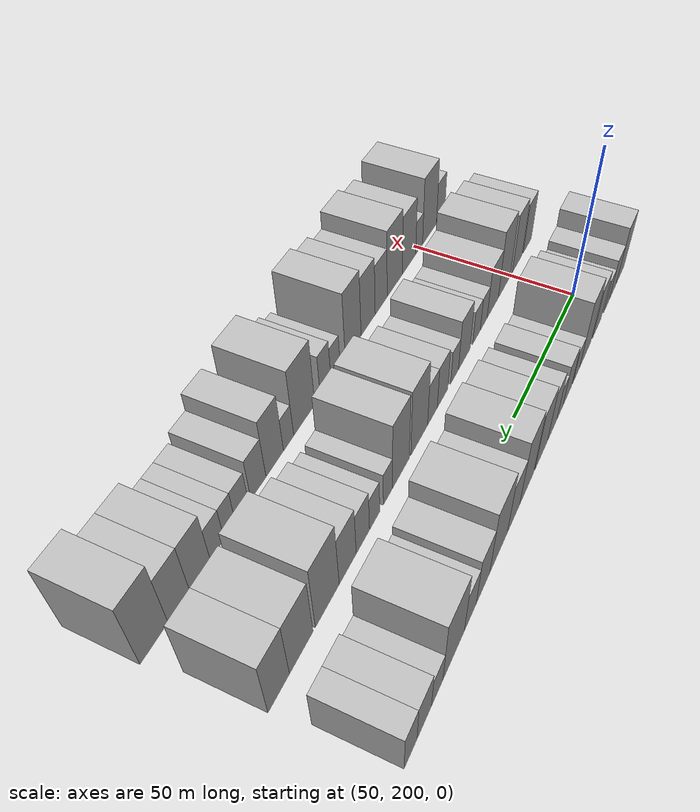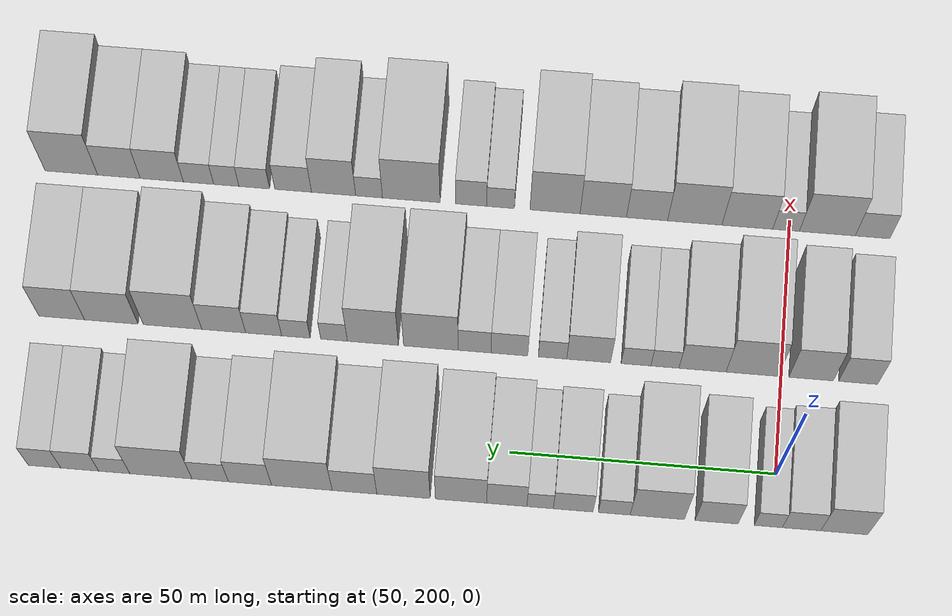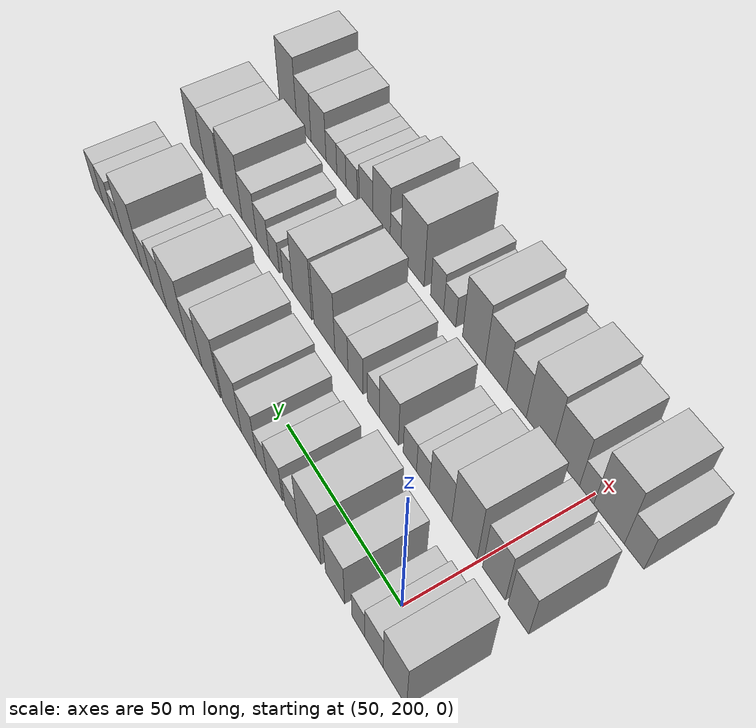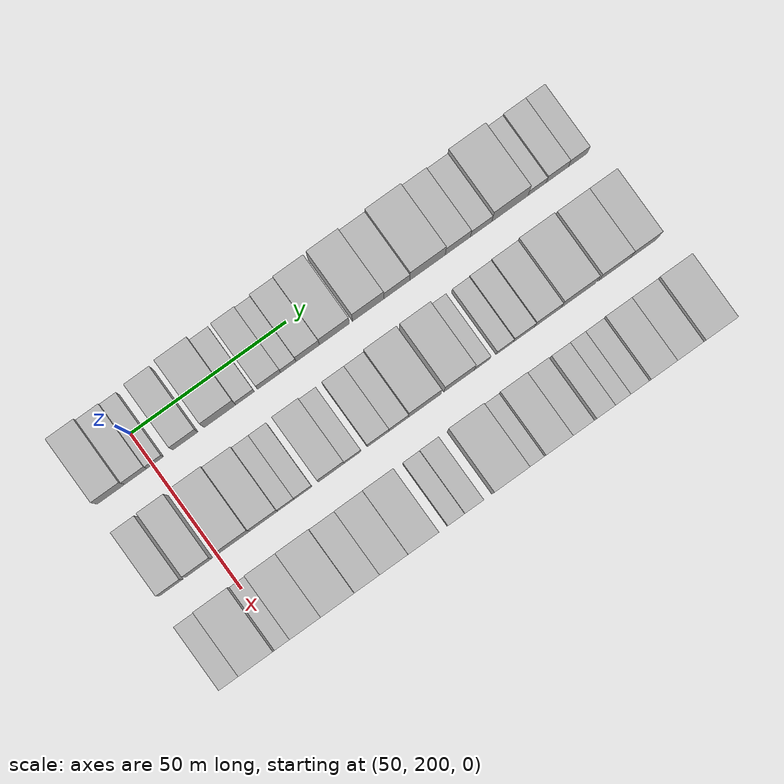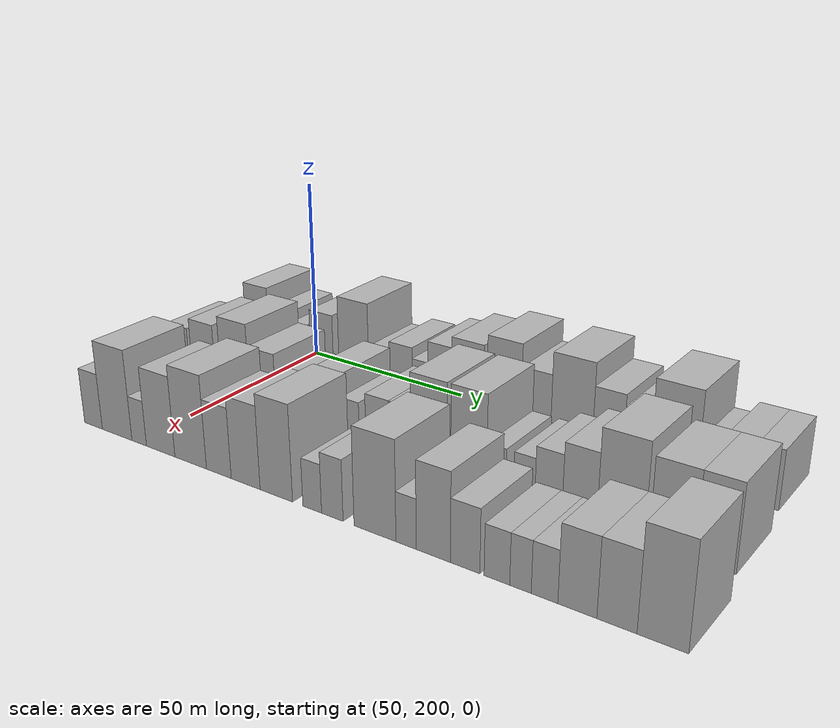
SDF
<sdf version="1.6">
 <world name="default">
  <model name="building_56">
   <static>1</static>
   <pose>50.0000 186.6588 0 0.000000 0.000000 0.000000</pose>
   <link name="link">
    <pose>0 0 10.50 0 0 0</pose>
    <collision name="collision"><geometry><box><size>20.0000 8.8078 21.0000</size></box></geometry></collision>
    <visual name="visual">
     <cast_shadows>0</cast_shadows>
     <geometry><box><size>20.0000 8.8078 21.0000</size></box></geometry>
     <material>
      <script>
       <uri>model://HANNAS_wall/materials/scripts</uri>
       <uri>model://HANNAS_wall/materials/textures</uri>
       <name>vrc/HANNAS_wall</name>
      </script>
     </material>
    </visual>
   </link>
  </model>
  <model name="building_57">
   <static>1</static>
   <pose>50.0000 194.6586 0 0.000000 0.000000 0.000000</pose>
   <link name="link">
    <pose>0 0 7.50 0 0 0</pose>
    <collision name="collision"><geometry><box><size>20.0000 7.1919 15.0000</size></box></geometry></collision>
    <visual name="visual">
     <cast_shadows>0</cast_shadows>
     <geometry><box><size>20.0000 7.1919 15.0000</size></box></geometry>
     <material>
      <script>
       <uri>model://HANNAS_wall/materials/scripts</uri>
       <uri>model://HANNAS_wall/materials/textures</uri>
       <name>vrc/HANNAS_wall</name>
      </script>
     </material>
    </visual>
   </link>
  </model>
  <model name="building_58">
   <static>1</static>
   <pose>50.0000 200.8763 0 0.000000 0.000000 0.000000</pose>
   <link name="link">
    <pose>0 0 6.00 0 0 0</pose>
    <collision name="collision"><geometry><box><size>20.0000 5.2436 12.0000</size></box></geometry></collision>
    <visual name="visual">
     <cast_shadows>0</cast_shadows>
     <geometry><box><size>20.0000 5.2436 12.0000</size></box></geometry>
     <material>
      <script>
       <uri>model://HANNAS_wall/materials/scripts</uri>
       <uri>model://HANNAS_wall/materials/textures</uri>
       <name>vrc/HANNAS_wall</name>
      </script>
     </material>
    </visual>
   </link>
  </model>
  <model name="building_59">
   <static>1</static>
   <pose>50.0000 210.5300 0 0.000000 0.000000 0.000000</pose>
   <link name="link">
    <pose>0 0 9.00 0 0 0</pose>
    <collision name="collision"><geometry><box><size>20.0000 8.0638 18.0000</size></box></geometry></collision>
    <visual name="visual">
     <cast_shadows>0</cast_shadows>
     <geometry><box><size>20.0000 8.0638 18.0000</size></box></geometry>
     <material>
      <script>
       <uri>model://HANNAS_wall/materials/scripts</uri>
       <uri>model://HANNAS_wall/materials/textures</uri>
       <name>vrc/HANNAS_wall</name>
      </script>
     </material>
    </visual>
   </link>
  </model>
  <model name="building_60">
   <static>1</static>
   <pose>50.0000 221.6558 0 0.000000 0.000000 0.000000</pose>
   <link name="link">
    <pose>0 0 12.00 0 0 0</pose>
    <collision name="collision"><geometry><box><size>20.0000 10.1877 24.0000</size></box></geometry></collision>
    <visual name="visual">
     <cast_shadows>0</cast_shadows>
     <geometry><box><size>20.0000 10.1877 24.0000</size></box></geometry>
     <material>
      <script>
       <uri>model://HANNAS_wall/materials/scripts</uri>
       <uri>model://HANNAS_wall/materials/textures</uri>
       <name>vrc/HANNAS_wall</name>
      </script>
     </material>
    </visual>
   </link>
  </model>
  <model name="building_61">
   <static>1</static>
   <pose>50.0000 229.7219 0 0.000000 0.000000 0.000000</pose>
   <link name="link">
    <pose>0 0 6.00 0 0 0</pose>
    <collision name="collision"><geometry><box><size>20.0000 5.9446 12.0000</size></box></geometry></collision>
    <visual name="visual">
     <cast_shadows>0</cast_shadows>
     <geometry><box><size>20.0000 5.9446 12.0000</size></box></geometry>
     <material>
      <script>
       <uri>model://HANNAS_wall/materials/scripts</uri>
       <uri>model://HANNAS_wall/materials/textures</uri>
       <name>vrc/HANNAS_wall</name>
      </script>
     </material>
    </visual>
   </link>
  </model>
  <model name="building_62">
   <static>1</static>
   <pose>50.0000 237.4242 0 0.000000 0.000000 0.000000</pose>
   <link name="link">
    <pose>0 0 7.50 0 0 0</pose>
    <collision name="collision"><geometry><box><size>20.0000 7.4600 15.0000</size></box></geometry></collision>
    <visual name="visual">
     <cast_shadows>0</cast_shadows>
     <geometry><box><size>20.0000 7.4600 15.0000</size></box></geometry>
     <material>
      <script>
       <uri>model://HANNAS_wall/materials/scripts</uri>
       <uri>model://HANNAS_wall/materials/textures</uri>
       <name>vrc/HANNAS_wall</name>
      </script>
     </material>
    </visual>
   </link>
  </model>
  <model name="building_63">
   <static>1</static>
   <pose>50.0000 243.6281 0 0.000000 0.000000 0.000000</pose>
   <link name="link">
    <pose>0 0 6.00 0 0 0</pose>
    <collision name="collision"><geometry><box><size>20.0000 4.9477 12.0000</size></box></geometry></collision>
    <visual name="visual">
     <cast_shadows>0</cast_shadows>
     <geometry><box><size>20.0000 4.9477 12.0000</size></box></geometry>
     <material>
      <script>
       <uri>model://HANNAS_wall/materials/scripts</uri>
       <uri>model://HANNAS_wall/materials/textures</uri>
       <name>vrc/HANNAS_wall</name>
      </script>
     </material>
    </visual>
   </link>
  </model>
  <model name="building_64">
   <static>1</static>
   <pose>50.0000 249.8682 0 0.000000 0.000000 0.000000</pose>
   <link name="link">
    <pose>0 0 9.00 0 0 0</pose>
    <collision name="collision"><geometry><box><size>20.0000 7.5326 18.0000</size></box></geometry></collision>
    <visual name="visual">
     <cast_shadows>0</cast_shadows>
     <geometry><box><size>20.0000 7.5326 18.0000</size></box></geometry>
     <material>
      <script>
       <uri>model://HANNAS_wall/materials/scripts</uri>
       <uri>model://HANNAS_wall/materials/textures</uri>
       <name>vrc/HANNAS_wall</name>
      </script>
     </material>
    </visual>
   </link>
  </model>
  <model name="building_65">
   <static>1</static>
   <pose>50.0000 258.4494 0 0.000000 0.000000 0.000000</pose>
   <link name="link">
    <pose>0 0 10.50 0 0 0</pose>
    <collision name="collision"><geometry><box><size>20.0000 9.6297 21.0000</size></box></geometry></collision>
    <visual name="visual">
     <cast_shadows>0</cast_shadows>
     <geometry><box><size>20.0000 9.6297 21.0000</size></box></geometry>
     <material>
      <script>
       <uri>model://HANNAS_wall/materials/scripts</uri>
       <uri>model://HANNAS_wall/materials/textures</uri>
       <name>vrc/HANNAS_wall</name>
      </script>
     </material>
    </visual>
   </link>
  </model>
  <model name="building_66">
   <static>1</static>
   <pose>50.0000 269.2735 0 0.000000 0.000000 0.000000</pose>
   <link name="link">
    <pose>0 0 12.00 0 0 0</pose>
    <collision name="collision"><geometry><box><size>20.0000 10.0184 24.0000</size></box></geometry></collision>
    <visual name="visual">
     <cast_shadows>0</cast_shadows>
     <geometry><box><size>20.0000 10.0184 24.0000</size></box></geometry>
     <material>
      <script>
       <uri>model://HANNAS_wall/materials/scripts</uri>
       <uri>model://HANNAS_wall/materials/textures</uri>
       <name>vrc/HANNAS_wall</name>
      </script>
     </material>
    </visual>
   </link>
  </model>
  <model name="building_67">
   <static>1</static>
   <pose>50.0000 278.4871 0 0.000000 0.000000 0.000000</pose>
   <link name="link">
    <pose>0 0 9.00 0 0 0</pose>
    <collision name="collision"><geometry><box><size>20.0000 8.4088 18.0000</size></box></geometry></collision>
    <visual name="visual">
     <cast_shadows>0</cast_shadows>
     <geometry><box><size>20.0000 8.4088 18.0000</size></box></geometry>
     <material>
      <script>
       <uri>model://HANNAS_wall/materials/scripts</uri>
       <uri>model://HANNAS_wall/materials/textures</uri>
       <name>vrc/HANNAS_wall</name>
      </script>
     </material>
    </visual>
   </link>
  </model>
  <model name="building_68">
   <static>1</static>
   <pose>50.0000 288.3942 0 0.000000 0.000000 0.000000</pose>
   <link name="link">
    <pose>0 0 12.00 0 0 0</pose>
    <collision name="collision"><geometry><box><size>20.0000 11.4055 24.0000</size></box></geometry></collision>
    <visual name="visual">
     <cast_shadows>0</cast_shadows>
     <geometry><box><size>20.0000 11.4055 24.0000</size></box></geometry>
     <material>
      <script>
       <uri>model://HANNAS_wall/materials/scripts</uri>
       <uri>model://HANNAS_wall/materials/textures</uri>
       <name>vrc/HANNAS_wall</name>
      </script>
     </material>
    </visual>
   </link>
  </model>
  <model name="building_69">
   <static>1</static>
   <pose>50.0000 298.1663 0 0.000000 0.000000 0.000000</pose>
   <link name="link">
    <pose>0 0 9.00 0 0 0</pose>
    <collision name="collision"><geometry><box><size>20.0000 8.1387 18.0000</size></box></geometry></collision>
    <visual name="visual">
     <cast_shadows>0</cast_shadows>
     <geometry><box><size>20.0000 8.1387 18.0000</size></box></geometry>
     <material>
      <script>
       <uri>model://HANNAS_wall/materials/scripts</uri>
       <uri>model://HANNAS_wall/materials/textures</uri>
       <name>vrc/HANNAS_wall</name>
      </script>
     </material>
    </visual>
   </link>
  </model>
  <model name="building_70">
   <static>1</static>
   <pose>50.0000 305.6790 0 0.000000 0.000000 0.000000</pose>
   <link name="link">
    <pose>0 0 7.50 0 0 0</pose>
    <collision name="collision"><geometry><box><size>20.0000 6.8867 15.0000</size></box></geometry></collision>
    <visual name="visual">
     <cast_shadows>0</cast_shadows>
     <geometry><box><size>20.0000 6.8867 15.0000</size></box></geometry>
     <material>
      <script>
       <uri>model://HANNAS_wall/materials/scripts</uri>
       <uri>model://HANNAS_wall/materials/textures</uri>
       <name>vrc/HANNAS_wall</name>
      </script>
     </material>
    </visual>
   </link>
  </model>
  <model name="building_71">
   <static>1</static>
   <pose>50.0000 314.9829 0 0.000000 0.000000 0.000000</pose>
   <link name="link">
    <pose>0 0 12.00 0 0 0</pose>
    <collision name="collision"><geometry><box><size>20.0000 11.7210 24.0000</size></box></geometry></collision>
    <visual name="visual">
     <cast_shadows>0</cast_shadows>
     <geometry><box><size>20.0000 11.7210 24.0000</size></box></geometry>
     <material>
      <script>
       <uri>model://HANNAS_wall/materials/scripts</uri>
       <uri>model://HANNAS_wall/materials/textures</uri>
       <name>vrc/HANNAS_wall</name>
      </script>
     </material>
    </visual>
   </link>
  </model>
  <model name="building_72">
   <static>1</static>
   <pose>50.0000 323.7966 0 0.000000 0.000000 0.000000</pose>
   <link name="link">
    <pose>0 0 6.00 0 0 0</pose>
    <collision name="collision"><geometry><box><size>20.0000 5.9063 12.0000</size></box></geometry></collision>
    <visual name="visual">
     <cast_shadows>0</cast_shadows>
     <geometry><box><size>20.0000 5.9063 12.0000</size></box></geometry>
     <material>
      <script>
       <uri>model://HANNAS_wall/materials/scripts</uri>
       <uri>model://HANNAS_wall/materials/textures</uri>
       <name>vrc/HANNAS_wall</name>
      </script>
     </material>
    </visual>
   </link>
  </model>
  <model name="building_73">
   <static>1</static>
   <pose>50.0000 330.3270 0 0.000000 0.000000 0.000000</pose>
   <link name="link">
    <pose>0 0 7.50 0 0 0</pose>
    <collision name="collision"><geometry><box><size>20.0000 7.1544 15.0000</size></box></geometry></collision>
    <visual name="visual">
     <cast_shadows>0</cast_shadows>
     <geometry><box><size>20.0000 7.1544 15.0000</size></box></geometry>
     <material>
      <script>
       <uri>model://HANNAS_wall/materials/scripts</uri>
       <uri>model://HANNAS_wall/materials/textures</uri>
       <name>vrc/HANNAS_wall</name>
      </script>
     </material>
    </visual>
   </link>
  </model>
  <model name="building_74">
   <static>1</static>
   <pose>50.0000 336.9763 0 0.000000 0.000000 0.000000</pose>
   <link name="link">
    <pose>0 0 7.50 0 0 0</pose>
    <collision name="collision"><geometry><box><size>20.0000 6.1443 15.0000</size></box></geometry></collision>
    <visual name="visual">
     <cast_shadows>0</cast_shadows>
     <geometry><box><size>20.0000 6.1443 15.0000</size></box></geometry>
     <material>
      <script>
       <uri>model://HANNAS_wall/materials/scripts</uri>
       <uri>model://HANNAS_wall/materials/textures</uri>
       <name>vrc/HANNAS_wall</name>
      </script>
     </material>
    </visual>
   </link>
  </model>
  <model name="building_133">
   <static>1</static>
   <pose>79.0000 185.4273 0 0.000000 0.000000 0.000000</pose>
   <link name="link">
    <pose>0 0 9.00 0 0 0</pose>
    <collision name="collision"><geometry><box><size>20.0000 7.3990 18.0000</size></box></geometry></collision>
    <visual name="visual">
     <cast_shadows>0</cast_shadows>
     <geometry><box><size>20.0000 7.3990 18.0000</size></box></geometry>
     <material>
      <script>
       <uri>model://HANNAS_wall/materials/scripts</uri>
       <uri>model://HANNAS_wall/materials/textures</uri>
       <name>vrc/HANNAS_wall</name>
      </script>
     </material>
    </visual>
   </link>
  </model>
  <model name="building_134">
   <static>1</static>
   <pose>79.0000 194.3509 0 0.000000 0.000000 0.000000</pose>
   <link name="link">
    <pose>0 0 10.50 0 0 0</pose>
    <collision name="collision"><geometry><box><size>20.0000 8.4482 21.0000</size></box></geometry></collision>
    <visual name="visual">
     <cast_shadows>0</cast_shadows>
     <geometry><box><size>20.0000 8.4482 21.0000</size></box></geometry>
     <material>
      <script>
       <uri>model://HANNAS_wall/materials/scripts</uri>
       <uri>model://HANNAS_wall/materials/textures</uri>
       <name>vrc/HANNAS_wall</name>
      </script>
     </material>
    </visual>
   </link>
  </model>
  <model name="building_135">
   <static>1</static>
   <pose>79.0000 205.5321 0 0.000000 0.000000 0.000000</pose>
   <link name="link">
    <pose>0 0 12.00 0 0 0</pose>
    <collision name="collision"><geometry><box><size>20.0000 9.9142 24.0000</size></box></geometry></collision>
    <visual name="visual">
     <cast_shadows>0</cast_shadows>
     <geometry><box><size>20.0000 9.9142 24.0000</size></box></geometry>
     <material>
      <script>
       <uri>model://HANNAS_wall/materials/scripts</uri>
       <uri>model://HANNAS_wall/materials/textures</uri>
       <name>vrc/HANNAS_wall</name>
      </script>
     </material>
    </visual>
   </link>
  </model>
  <model name="building_136">
   <static>1</static>
   <pose>79.0000 214.9733 0 0.000000 0.000000 0.000000</pose>
   <link name="link">
    <pose>0 0 9.00 0 0 0</pose>
    <collision name="collision"><geometry><box><size>20.0000 8.9683 18.0000</size></box></geometry></collision>
    <visual name="visual">
     <cast_shadows>0</cast_shadows>
     <geometry><box><size>20.0000 8.9683 18.0000</size></box></geometry>
     <material>
      <script>
       <uri>model://HANNAS_wall/materials/scripts</uri>
       <uri>model://HANNAS_wall/materials/textures</uri>
       <name>vrc/HANNAS_wall</name>
      </script>
     </material>
    </visual>
   </link>
  </model>
  <model name="building_137">
   <static>1</static>
   <pose>79.0000 222.1232 0 0.000000 0.000000 0.000000</pose>
   <link name="link">
    <pose>0 0 6.00 0 0 0</pose>
    <collision name="collision"><geometry><box><size>20.0000 5.3314 12.0000</size></box></geometry></collision>
    <visual name="visual">
     <cast_shadows>0</cast_shadows>
     <geometry><box><size>20.0000 5.3314 12.0000</size></box></geometry>
     <material>
      <script>
       <uri>model://HANNAS_wall/materials/scripts</uri>
       <uri>model://HANNAS_wall/materials/textures</uri>
       <name>vrc/HANNAS_wall</name>
      </script>
     </material>
    </visual>
   </link>
  </model>
  <model name="building_138">
   <static>1</static>
   <pose>79.0000 227.6150 0 0.000000 0.000000 0.000000</pose>
   <link name="link">
    <pose>0 0 6.00 0 0 0</pose>
    <collision name="collision"><geometry><box><size>20.0000 5.6523 12.0000</size></box></geometry></collision>
    <visual name="visual">
     <cast_shadows>0</cast_shadows>
     <geometry><box><size>20.0000 5.6523 12.0000</size></box></geometry>
     <material>
      <script>
       <uri>model://HANNAS_wall/materials/scripts</uri>
       <uri>model://HANNAS_wall/materials/textures</uri>
       <name>vrc/HANNAS_wall</name>
      </script>
     </material>
    </visual>
   </link>
  </model>
  <model name="building_139">
   <static>1</static>
   <pose>79.0000 236.6187 0 0.000000 0.000000 0.000000</pose>
   <link name="link">
    <pose>0 0 9.00 0 0 0</pose>
    <collision name="collision"><geometry><box><size>20.0000 8.3549 18.0000</size></box></geometry></collision>
    <visual name="visual">
     <cast_shadows>0</cast_shadows>
     <geometry><box><size>20.0000 8.3549 18.0000</size></box></geometry>
     <material>
      <script>
       <uri>model://HANNAS_wall/materials/scripts</uri>
       <uri>model://HANNAS_wall/materials/textures</uri>
       <name>vrc/HANNAS_wall</name>
      </script>
     </material>
    </visual>
   </link>
  </model>
  <model name="building_140">
   <static>1</static>
   <pose>79.0000 243.5031 0 0.000000 0.000000 0.000000</pose>
   <link name="link">
    <pose>0 0 6.00 0 0 0</pose>
    <collision name="collision"><geometry><box><size>20.0000 5.4139 12.0000</size></box></geometry></collision>
    <visual name="visual">
     <cast_shadows>0</cast_shadows>
     <geometry><box><size>20.0000 5.4139 12.0000</size></box></geometry>
     <material>
      <script>
       <uri>model://HANNAS_wall/materials/scripts</uri>
       <uri>model://HANNAS_wall/materials/textures</uri>
       <name>vrc/HANNAS_wall</name>
      </script>
     </material>
    </visual>
   </link>
  </model>
  <model name="building_141">
   <static>1</static>
   <pose>79.0000 251.7111 0 0.000000 0.000000 0.000000</pose>
   <link name="link">
    <pose>0 0 7.50 0 0 0</pose>
    <collision name="collision"><geometry><box><size>20.0000 7.0022 15.0000</size></box></geometry></collision>
    <visual name="visual">
     <cast_shadows>0</cast_shadows>
     <geometry><box><size>20.0000 7.0022 15.0000</size></box></geometry>
     <material>
      <script>
       <uri>model://HANNAS_wall/materials/scripts</uri>
       <uri>model://HANNAS_wall/materials/textures</uri>
       <name>vrc/HANNAS_wall</name>
      </script>
     </material>
    </visual>
   </link>
  </model>
  <model name="building_142">
   <static>1</static>
   <pose>79.0000 258.3462 0 0.000000 0.000000 0.000000</pose>
   <link name="link">
    <pose>0 0 7.50 0 0 0</pose>
    <collision name="collision"><geometry><box><size>20.0000 6.2681 15.0000</size></box></geometry></collision>
    <visual name="visual">
     <cast_shadows>0</cast_shadows>
     <geometry><box><size>20.0000 6.2681 15.0000</size></box></geometry>
     <material>
      <script>
       <uri>model://HANNAS_wall/materials/scripts</uri>
       <uri>model://HANNAS_wall/materials/textures</uri>
       <name>vrc/HANNAS_wall</name>
      </script>
     </material>
    </visual>
   </link>
  </model>
  <model name="building_143">
   <static>1</static>
   <pose>79.0000 266.6695 0 0.000000 0.000000 0.000000</pose>
   <link name="link">
    <pose>0 0 12.00 0 0 0</pose>
    <collision name="collision"><geometry><box><size>20.0000 10.3784 24.0000</size></box></geometry></collision>
    <visual name="visual">
     <cast_shadows>0</cast_shadows>
     <geometry><box><size>20.0000 10.3784 24.0000</size></box></geometry>
     <material>
      <script>
       <uri>model://HANNAS_wall/materials/scripts</uri>
       <uri>model://HANNAS_wall/materials/textures</uri>
       <name>vrc/HANNAS_wall</name>
      </script>
     </material>
    </visual>
   </link>
  </model>
  <model name="building_144">
   <static>1</static>
   <pose>79.0000 277.7331 0 0.000000 0.000000 0.000000</pose>
   <link name="link">
    <pose>0 0 12.00 0 0 0</pose>
    <collision name="collision"><geometry><box><size>20.0000 9.7488 24.0000</size></box></geometry></collision>
    <visual name="visual">
     <cast_shadows>0</cast_shadows>
     <geometry><box><size>20.0000 9.7488 24.0000</size></box></geometry>
     <material>
      <script>
       <uri>model://HANNAS_wall/materials/scripts</uri>
       <uri>model://HANNAS_wall/materials/textures</uri>
       <name>vrc/HANNAS_wall</name>
      </script>
     </material>
    </visual>
   </link>
  </model>
  <model name="building_145">
   <static>1</static>
   <pose>79.0000 285.1532 0 0.000000 0.000000 0.000000</pose>
   <link name="link">
    <pose>0 0 6.00 0 0 0</pose>
    <collision name="collision"><geometry><box><size>20.0000 5.0913 12.0000</size></box></geometry></collision>
    <visual name="visual">
     <cast_shadows>0</cast_shadows>
     <geometry><box><size>20.0000 5.0913 12.0000</size></box></geometry>
     <material>
      <script>
       <uri>model://HANNAS_wall/materials/scripts</uri>
       <uri>model://HANNAS_wall/materials/textures</uri>
       <name>vrc/HANNAS_wall</name>
      </script>
     </material>
    </visual>
   </link>
  </model>
  <model name="building_146">
   <static>1</static>
   <pose>79.0000 292.4326 0 0.000000 0.000000 0.000000</pose>
   <link name="link">
    <pose>0 0 6.00 0 0 0</pose>
    <collision name="collision"><geometry><box><size>20.0000 5.4676 12.0000</size></box></geometry></collision>
    <visual name="visual">
     <cast_shadows>0</cast_shadows>
     <geometry><box><size>20.0000 5.4676 12.0000</size></box></geometry>
     <material>
      <script>
       <uri>model://HANNAS_wall/materials/scripts</uri>
       <uri>model://HANNAS_wall/materials/textures</uri>
       <name>vrc/HANNAS_wall</name>
      </script>
     </material>
    </visual>
   </link>
  </model>
  <model name="building_147">
   <static>1</static>
   <pose>79.0000 298.5995 0 0.000000 0.000000 0.000000</pose>
   <link name="link">
    <pose>0 0 7.50 0 0 0</pose>
    <collision name="collision"><geometry><box><size>20.0000 6.8662 15.0000</size></box></geometry></collision>
    <visual name="visual">
     <cast_shadows>0</cast_shadows>
     <geometry><box><size>20.0000 6.8662 15.0000</size></box></geometry>
     <material>
      <script>
       <uri>model://HANNAS_wall/materials/scripts</uri>
       <uri>model://HANNAS_wall/materials/textures</uri>
       <name>vrc/HANNAS_wall</name>
      </script>
     </material>
    </visual>
   </link>
  </model>
  <model name="building_148">
   <static>1</static>
   <pose>79.0000 306.2427 0 0.000000 0.000000 0.000000</pose>
   <link name="link">
    <pose>0 0 9.00 0 0 0</pose>
    <collision name="collision"><geometry><box><size>20.0000 8.4202 18.0000</size></box></geometry></collision>
    <visual name="visual">
     <cast_shadows>0</cast_shadows>
     <geometry><box><size>20.0000 8.4202 18.0000</size></box></geometry>
     <material>
      <script>
       <uri>model://HANNAS_wall/materials/scripts</uri>
       <uri>model://HANNAS_wall/materials/textures</uri>
       <name>vrc/HANNAS_wall</name>
      </script>
     </material>
    </visual>
   </link>
  </model>
  <model name="building_149">
   <static>1</static>
   <pose>79.0000 316.0501 0 0.000000 0.000000 0.000000</pose>
   <link name="link">
    <pose>0 0 12.00 0 0 0</pose>
    <collision name="collision"><geometry><box><size>20.0000 11.1946 24.0000</size></box></geometry></collision>
    <visual name="visual">
     <cast_shadows>0</cast_shadows>
     <geometry><box><size>20.0000 11.1946 24.0000</size></box></geometry>
     <material>
      <script>
       <uri>model://HANNAS_wall/materials/scripts</uri>
       <uri>model://HANNAS_wall/materials/textures</uri>
       <name>vrc/HANNAS_wall</name>
      </script>
     </material>
    </visual>
   </link>
  </model>
  <model name="building_150">
   <static>1</static>
   <pose>79.0000 327.7693 0 0.000000 0.000000 0.000000</pose>
   <link name="link">
    <pose>0 0 10.50 0 0 0</pose>
    <collision name="collision"><geometry><box><size>20.0000 10.2438 21.0000</size></box></geometry></collision>
    <visual name="visual">
     <cast_shadows>0</cast_shadows>
     <geometry><box><size>20.0000 10.2438 21.0000</size></box></geometry>
     <material>
      <script>
       <uri>model://HANNAS_wall/materials/scripts</uri>
       <uri>model://HANNAS_wall/materials/textures</uri>
       <name>vrc/HANNAS_wall</name>
      </script>
     </material>
    </visual>
   </link>
  </model>
  <model name="building_151">
   <static>1</static>
   <pose>79.0000 337.2841 0 0.000000 0.000000 0.000000</pose>
   <link name="link">
    <pose>0 0 10.50 0 0 0</pose>
    <collision name="collision"><geometry><box><size>20.0000 8.7858 21.0000</size></box></geometry></collision>
    <visual name="visual">
     <cast_shadows>0</cast_shadows>
     <geometry><box><size>20.0000 8.7858 21.0000</size></box></geometry>
     <material>
      <script>
       <uri>model://HANNAS_wall/materials/scripts</uri>
       <uri>model://HANNAS_wall/materials/textures</uri>
       <name>vrc/HANNAS_wall</name>
      </script>
     </material>
    </visual>
   </link>
  </model>
  <model name="building_212">
   <static>1</static>
   <pose>108.0000 183.9963 0 0.000000 0.000000 0.000000</pose>
   <link name="link">
    <pose>0 0 7.50 0 0 0</pose>
    <collision name="collision"><geometry><box><size>20.0000 6.6519 15.0000</size></box></geometry></collision>
    <visual name="visual">
     <cast_shadows>0</cast_shadows>
     <geometry><box><size>20.0000 6.6519 15.0000</size></box></geometry>
     <material>
      <script>
       <uri>model://HANNAS_wall/materials/scripts</uri>
       <uri>model://HANNAS_wall/materials/textures</uri>
       <name>vrc/HANNAS_wall</name>
      </script>
     </material>
    </visual>
   </link>
  </model>
  <model name="building_213">
   <static>1</static>
   <pose>108.0000 192.7086 0 0.000000 0.000000 0.000000</pose>
   <link name="link">
    <pose>0 0 12.00 0 0 0</pose>
    <collision name="collision"><geometry><box><size>20.0000 10.7726 24.0000</size></box></geometry></collision>
    <visual name="visual">
     <cast_shadows>0</cast_shadows>
     <geometry><box><size>20.0000 10.7726 24.0000</size></box></geometry>
     <material>
      <script>
       <uri>model://HANNAS_wall/materials/scripts</uri>
       <uri>model://HANNAS_wall/materials/textures</uri>
       <name>vrc/HANNAS_wall</name>
      </script>
     </material>
    </visual>
   </link>
  </model>
  <model name="building_214">
   <static>1</static>
   <pose>108.0000 200.6574 0 0.000000 0.000000 0.000000</pose>
   <link name="link">
    <pose>0 0 6.00 0 0 0</pose>
    <collision name="collision"><geometry><box><size>20.0000 5.1249 12.0000</size></box></geometry></collision>
    <visual name="visual">
     <cast_shadows>0</cast_shadows>
     <geometry><box><size>20.0000 5.1249 12.0000</size></box></geometry>
     <material>
      <script>
       <uri>model://HANNAS_wall/materials/scripts</uri>
       <uri>model://HANNAS_wall/materials/textures</uri>
       <name>vrc/HANNAS_wall</name>
      </script>
     </material>
    </visual>
   </link>
  </model>
  <model name="building_215">
   <static>1</static>
   <pose>108.0000 208.1190 0 0.000000 0.000000 0.000000</pose>
   <link name="link">
    <pose>0 0 10.50 0 0 0</pose>
    <collision name="collision"><geometry><box><size>20.0000 9.7983 21.0000</size></box></geometry></collision>
    <visual name="visual">
     <cast_shadows>0</cast_shadows>
     <geometry><box><size>20.0000 9.7983 21.0000</size></box></geometry>
     <material>
      <script>
       <uri>model://HANNAS_wall/materials/scripts</uri>
       <uri>model://HANNAS_wall/materials/textures</uri>
       <name>vrc/HANNAS_wall</name>
      </script>
     </material>
    </visual>
   </link>
  </model>
  <model name="building_216">
   <static>1</static>
   <pose>108.0000 218.2587 0 0.000000 0.000000 0.000000</pose>
   <link name="link">
    <pose>0 0 12.00 0 0 0</pose>
    <collision name="collision"><geometry><box><size>20.0000 10.4811 24.0000</size></box></geometry></collision>
    <visual name="visual">
     <cast_shadows>0</cast_shadows>
     <geometry><box><size>20.0000 10.4811 24.0000</size></box></geometry>
     <material>
      <script>
       <uri>model://HANNAS_wall/materials/scripts</uri>
       <uri>model://HANNAS_wall/materials/textures</uri>
       <name>vrc/HANNAS_wall</name>
      </script>
     </material>
    </visual>
   </link>
  </model>
  <model name="building_217">
   <static>1</static>
   <pose>108.0000 227.4652 0 0.000000 0.000000 0.000000</pose>
   <link name="link">
    <pose>0 0 9.00 0 0 0</pose>
    <collision name="collision"><geometry><box><size>20.0000 7.9320 18.0000</size></box></geometry></collision>
    <visual name="visual">
     <cast_shadows>0</cast_shadows>
     <geometry><box><size>20.0000 7.9320 18.0000</size></box></geometry>
     <material>
      <script>
       <uri>model://HANNAS_wall/materials/scripts</uri>
       <uri>model://HANNAS_wall/materials/textures</uri>
       <name>vrc/HANNAS_wall</name>
      </script>
     </material>
    </visual>
   </link>
  </model>
  <model name="building_218">
   <static>1</static>
   <pose>108.0000 235.9031 0 0.000000 0.000000 0.000000</pose>
   <link name="link">
    <pose>0 0 10.50 0 0 0</pose>
    <collision name="collision"><geometry><box><size>20.0000 8.9437 21.0000</size></box></geometry></collision>
    <visual name="visual">
     <cast_shadows>0</cast_shadows>
     <geometry><box><size>20.0000 8.9437 21.0000</size></box></geometry>
     <material>
      <script>
       <uri>model://HANNAS_wall/materials/scripts</uri>
       <uri>model://HANNAS_wall/materials/textures</uri>
       <name>vrc/HANNAS_wall</name>
      </script>
     </material>
    </visual>
   </link>
  </model>
  <model name="building_219">
   <static>1</static>
   <pose>108.0000 245.2161 0 0.000000 0.000000 0.000000</pose>
   <link name="link">
    <pose>0 0 12.00 0 0 0</pose>
    <collision name="collision"><geometry><box><size>20.0000 9.6823 24.0000</size></box></geometry></collision>
    <visual name="visual">
     <cast_shadows>0</cast_shadows>
     <geometry><box><size>20.0000 9.6823 24.0000</size></box></geometry>
     <material>
      <script>
       <uri>model://HANNAS_wall/materials/scripts</uri>
       <uri>model://HANNAS_wall/materials/textures</uri>
       <name>vrc/HANNAS_wall</name>
      </script>
     </material>
    </visual>
   </link>
  </model>
  <model name="building_220">
   <static>1</static>
   <pose>108.0000 255.7367 0 0.000000 0.000000 0.000000</pose>
   <link name="link">
    <pose>0 0 6.00 0 0 0</pose>
    <collision name="collision"><geometry><box><size>20.0000 5.3589 12.0000</size></box></geometry></collision>
    <visual name="visual">
     <cast_shadows>0</cast_shadows>
     <geometry><box><size>20.0000 5.3589 12.0000</size></box></geometry>
     <material>
      <script>
       <uri>model://HANNAS_wall/materials/scripts</uri>
       <uri>model://HANNAS_wall/materials/textures</uri>
       <name>vrc/HANNAS_wall</name>
      </script>
     </material>
    </visual>
   </link>
  </model>
  <model name="building_221">
   <static>1</static>
   <pose>108.0000 261.4233 0 0.000000 0.000000 0.000000</pose>
   <link name="link">
    <pose>0 0 7.50 0 0 0</pose>
    <collision name="collision"><geometry><box><size>20.0000 6.0143 15.0000</size></box></geometry></collision>
    <visual name="visual">
     <cast_shadows>0</cast_shadows>
     <geometry><box><size>20.0000 6.0143 15.0000</size></box></geometry>
     <material>
      <script>
       <uri>model://HANNAS_wall/materials/scripts</uri>
       <uri>model://HANNAS_wall/materials/textures</uri>
       <name>vrc/HANNAS_wall</name>
      </script>
     </material>
    </visual>
   </link>
  </model>
  <model name="building_222">
   <static>1</static>
   <pose>108.0000 273.0058 0 0.000000 0.000000 0.000000</pose>
   <link name="link">
    <pose>0 0 12.00 0 0 0</pose>
    <collision name="collision"><geometry><box><size>20.0000 11.1506 24.0000</size></box></geometry></collision>
    <visual name="visual">
     <cast_shadows>0</cast_shadows>
     <geometry><box><size>20.0000 11.1506 24.0000</size></box></geometry>
     <material>
      <script>
       <uri>model://HANNAS_wall/materials/scripts</uri>
       <uri>model://HANNAS_wall/materials/textures</uri>
       <name>vrc/HANNAS_wall</name>
      </script>
     </material>
    </visual>
   </link>
  </model>
  <model name="building_223">
   <static>1</static>
   <pose>108.0000 281.1759 0 0.000000 0.000000 0.000000</pose>
   <link name="link">
    <pose>0 0 6.00 0 0 0</pose>
    <collision name="collision"><geometry><box><size>20.0000 5.1896 12.0000</size></box></geometry></collision>
    <visual name="visual">
     <cast_shadows>0</cast_shadows>
     <geometry><box><size>20.0000 5.1896 12.0000</size></box></geometry>
     <material>
      <script>
       <uri>model://HANNAS_wall/materials/scripts</uri>
       <uri>model://HANNAS_wall/materials/textures</uri>
       <name>vrc/HANNAS_wall</name>
      </script>
     </material>
    </visual>
   </link>
  </model>
  <model name="building_224">
   <static>1</static>
   <pose>108.0000 288.0545 0 0.000000 0.000000 0.000000</pose>
   <link name="link">
    <pose>0 0 10.50 0 0 0</pose>
    <collision name="collision"><geometry><box><size>20.0000 8.5674 21.0000</size></box></geometry></collision>
    <visual name="visual">
     <cast_shadows>0</cast_shadows>
     <geometry><box><size>20.0000 8.5674 21.0000</size></box></geometry>
     <material>
      <script>
       <uri>model://HANNAS_wall/materials/scripts</uri>
       <uri>model://HANNAS_wall/materials/textures</uri>
       <name>vrc/HANNAS_wall</name>
      </script>
     </material>
    </visual>
   </link>
  </model>
  <model name="building_225">
   <static>1</static>
   <pose>108.0000 295.8930 0 0.000000 0.000000 0.000000</pose>
   <link name="link">
    <pose>0 0 7.50 0 0 0</pose>
    <collision name="collision"><geometry><box><size>20.0000 7.1097 15.0000</size></box></geometry></collision>
    <visual name="visual">
     <cast_shadows>0</cast_shadows>
     <geometry><box><size>20.0000 7.1097 15.0000</size></box></geometry>
     <material>
      <script>
       <uri>model://HANNAS_wall/materials/scripts</uri>
       <uri>model://HANNAS_wall/materials/textures</uri>
       <name>vrc/HANNAS_wall</name>
      </script>
     </material>
    </visual>
   </link>
  </model>
  <model name="building_226">
   <static>1</static>
   <pose>108.0000 303.4322 0 0.000000 0.000000 0.000000</pose>
   <link name="link">
    <pose>0 0 6.00 0 0 0</pose>
    <collision name="collision"><geometry><box><size>20.0000 5.9686 12.0000</size></box></geometry></collision>
    <visual name="visual">
     <cast_shadows>0</cast_shadows>
     <geometry><box><size>20.0000 5.9686 12.0000</size></box></geometry>
     <material>
      <script>
       <uri>model://HANNAS_wall/materials/scripts</uri>
       <uri>model://HANNAS_wall/materials/textures</uri>
       <name>vrc/HANNAS_wall</name>
      </script>
     </material>
    </visual>
   </link>
  </model>
  <model name="building_227">
   <static>1</static>
   <pose>108.0000 308.8617 0 0.000000 0.000000 0.000000</pose>
   <link name="link">
    <pose>0 0 6.00 0 0 0</pose>
    <collision name="collision"><geometry><box><size>20.0000 4.8904 12.0000</size></box></geometry></collision>
    <visual name="visual">
     <cast_shadows>0</cast_shadows>
     <geometry><box><size>20.0000 4.8904 12.0000</size></box></geometry>
     <material>
      <script>
       <uri>model://HANNAS_wall/materials/scripts</uri>
       <uri>model://HANNAS_wall/materials/textures</uri>
       <name>vrc/HANNAS_wall</name>
      </script>
     </material>
    </visual>
   </link>
  </model>
  <model name="building_228">
   <static>1</static>
   <pose>108.0000 314.2616 0 0.000000 0.000000 0.000000</pose>
   <link name="link">
    <pose>0 0 6.00 0 0 0</pose>
    <collision name="collision"><geometry><box><size>20.0000 5.9093 12.0000</size></box></geometry></collision>
    <visual name="visual">
     <cast_shadows>0</cast_shadows>
     <geometry><box><size>20.0000 5.9093 12.0000</size></box></geometry>
     <material>
      <script>
       <uri>model://HANNAS_wall/materials/scripts</uri>
       <uri>model://HANNAS_wall/materials/textures</uri>
       <name>vrc/HANNAS_wall</name>
      </script>
     </material>
    </visual>
   </link>
  </model>
  <model name="building_229">
   <static>1</static>
   <pose>108.0000 321.4079 0 0.000000 0.000000 0.000000</pose>
   <link name="link">
    <pose>0 0 9.00 0 0 0</pose>
    <collision name="collision"><geometry><box><size>20.0000 8.3832 18.0000</size></box></geometry></collision>
    <visual name="visual">
     <cast_shadows>0</cast_shadows>
     <geometry><box><size>20.0000 8.3832 18.0000</size></box></geometry>
     <material>
      <script>
       <uri>model://HANNAS_wall/materials/scripts</uri>
       <uri>model://HANNAS_wall/materials/textures</uri>
       <name>vrc/HANNAS_wall</name>
      </script>
     </material>
    </visual>
   </link>
  </model>
  <model name="building_230">
   <static>1</static>
   <pose>108.0000 329.7417 0 0.000000 0.000000 0.000000</pose>
   <link name="link">
    <pose>0 0 9.00 0 0 0</pose>
    <collision name="collision"><geometry><box><size>20.0000 8.2843 18.0000</size></box></geometry></collision>
    <visual name="visual">
     <cast_shadows>0</cast_shadows>
     <geometry><box><size>20.0000 8.2843 18.0000</size></box></geometry>
     <material>
      <script>
       <uri>model://HANNAS_wall/materials/scripts</uri>
       <uri>model://HANNAS_wall/materials/textures</uri>
       <name>vrc/HANNAS_wall</name>
      </script>
     </material>
    </visual>
   </link>
  </model>
  <model name="building_231">
   <static>1</static>
   <pose>108.0000 338.9987 0 0.000000 0.000000 0.000000</pose>
   <link name="link">
    <pose>0 0 12.00 0 0 0</pose>
    <collision name="collision"><geometry><box><size>20.0000 10.2298 24.0000</size></box></geometry></collision>
    <visual name="visual">
     <cast_shadows>0</cast_shadows>
     <geometry><box><size>20.0000 10.2298 24.0000</size></box></geometry>
     <material>
      <script>
       <uri>model://HANNAS_wall/materials/scripts</uri>
       <uri>model://HANNAS_wall/materials/textures</uri>
       <name>vrc/HANNAS_wall</name>
      </script>
     </material>
    </visual>
   </link>
  </model>
 </world>
</sdf>
